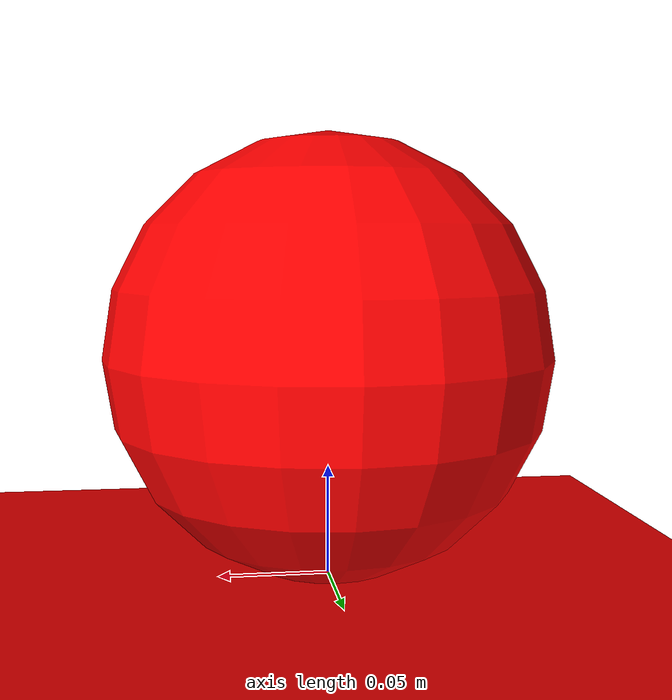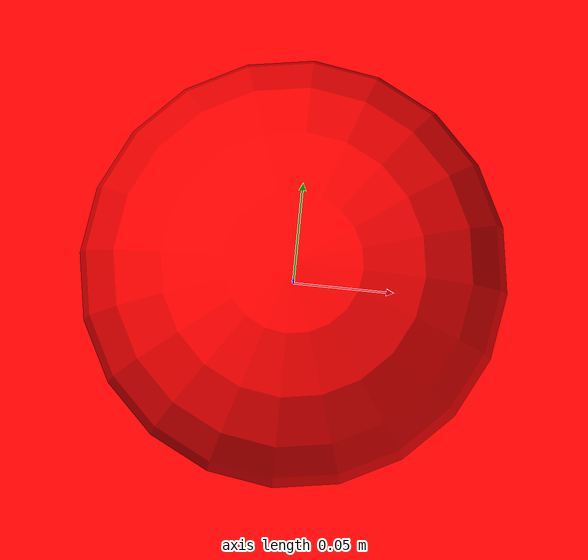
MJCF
<mujoco>
    <size njmax="3000" nconmax="1000"/>
    <option timestep="0.002"/>
    <default>
        <geom condim="6" density="1" rgba="1 0 0 1"/>
        <joint damping=".001"/>
        <motor ctrlrange="-1 1" ctrllimited="true"/>
        <site size="0.032" type="sphere"/>
    </default>
    <worldbody>
        <geom name="floor" size="5 5 0.1" type="plane" condim="6"/>
        <body name="robot" pos="0 0 .1">
            <camera name="vision" pos="0 0 .15" xyaxes="0 -1 0 .4 0 1" fovy="90"/>
            <joint type="slide" axis="1 0 0" name="x" damping="0.01"/>
            <joint type="slide" axis="0 1 0" name="y" damping="0.01"/>
            <geom name="robot" type="sphere" size=".1" friction="1 0.01 0.01"/>
            <site name="robot" rgba="1 0 0 .1"/>
        </body>
    </worldbody>
    <actuator>
        <motor gear="1" joint="x" name="act_x"/>
        <motor gear="1" joint="y" name="act_y"/>
    </actuator>
</mujoco>
